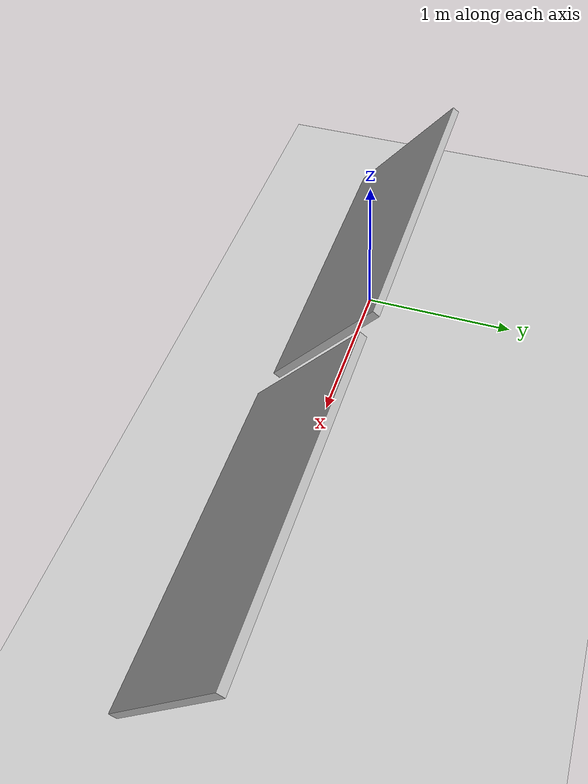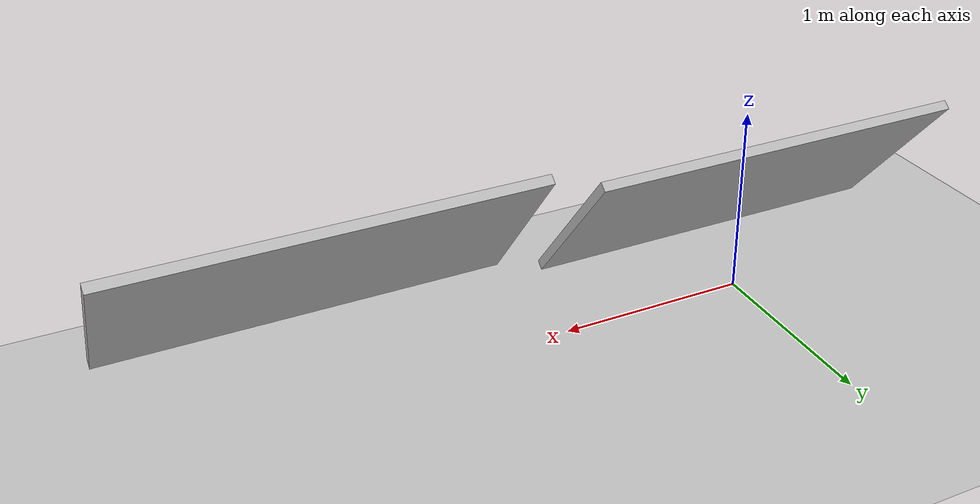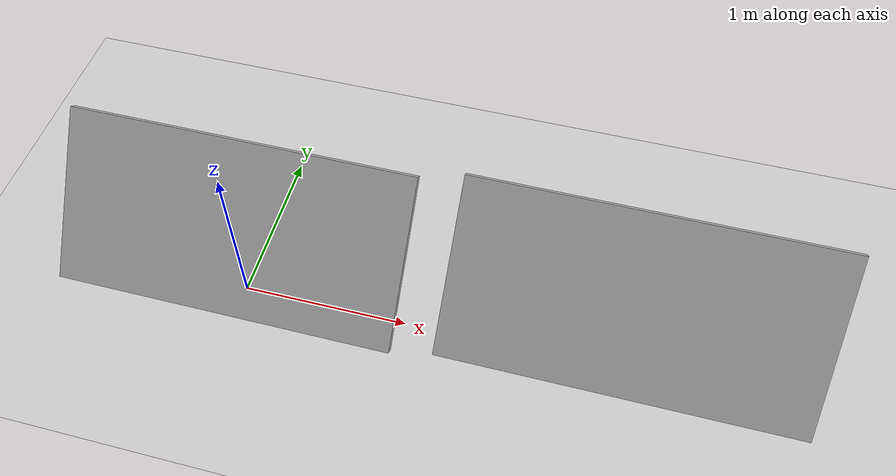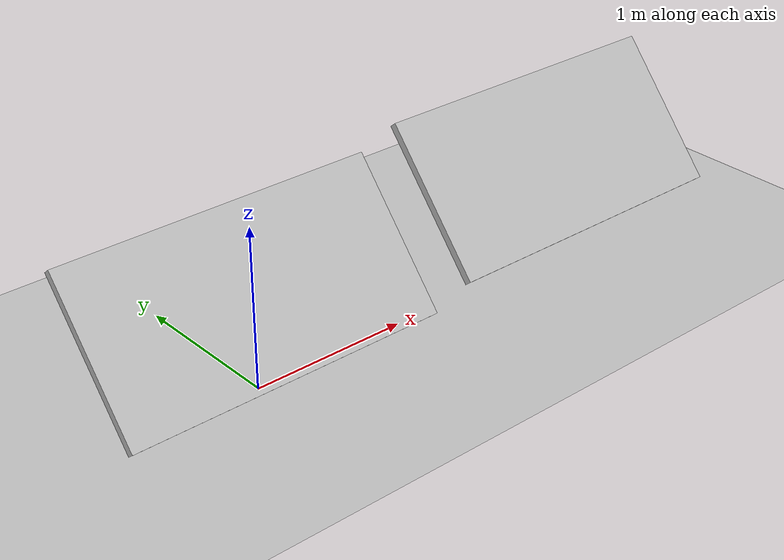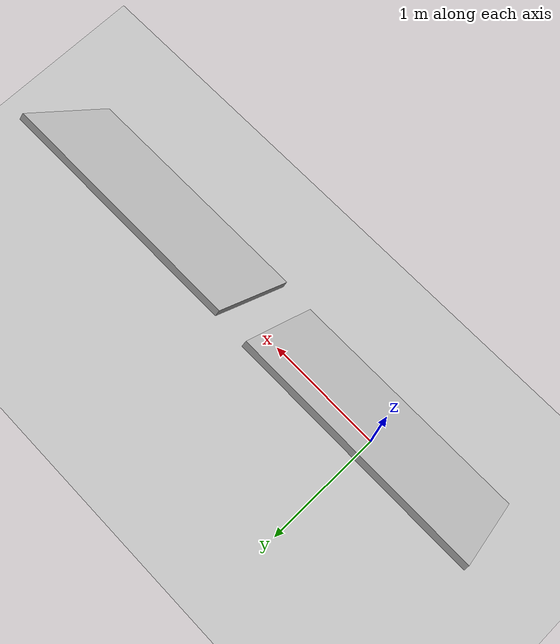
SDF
<?xml version="1.0" ?>
<sdf version="1.7">

  <world name="solar_cleaning_world">

    <!-- Physics -->
    <physics name="default_physics" type="ode">
      <max_step_size>0.001</max_step_size>
      <real_time_factor>1.0</real_time_factor>
    </physics>

    <!-- Custom Light -->
    <light name="sunlight" type="directional">
      <pose>0 0 10 0 0 0</pose>
      <diffuse>0.9 0.9 0.9 1</diffuse>
      <specular>0.1 0.1 0.1 1</specular>
      <direction>-0.3 0 -1</direction>
    </light>

    <!-- Ground -->
    <include>
      <uri>model://ground_plane</uri>
    </include>

    <!-- Solar Panel 1 -->
    <model name="solar_panel_1">
      <static>true</static>

      <link name="panel_link_1">
        <pose>0 0 0.6 0.87 0 0</pose>

        <collision name="collision_1">
          <geometry>
            <box>
              <size>2.0 1.0 0.05</size>
            </box>
          </geometry>
        </collision>

        <visual name="visual_1">
          <geometry>
            <box>
              <size>2.0 1.0 0.05</size>
            </box>
          </geometry>
        </visual>
      </link>
    </model>

    <!-- Solar Panel 2 -->
    <model name="solar_panel_2">
      <static>true</static>

      <link name="panel_link_2">
        <pose>2.25 0 0.7 0.87 0 0</pose>

        <collision name="collision_2">
          <geometry>
            <box>
              <size>2.0 1.0 0.05</size>
            </box>
          </geometry>
        </collision>

        <visual name="visual_2">
          <geometry>
            <box>
              <size>2.0 1.0 0.05</size>
            </box>
          </geometry>
        </visual>
      </link>
    </model>

  </world>
</sdf>
